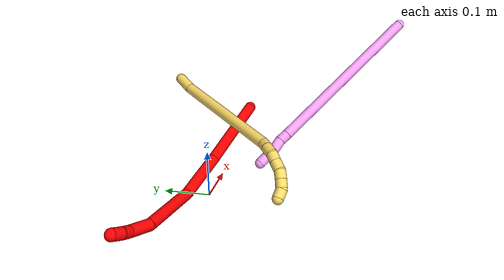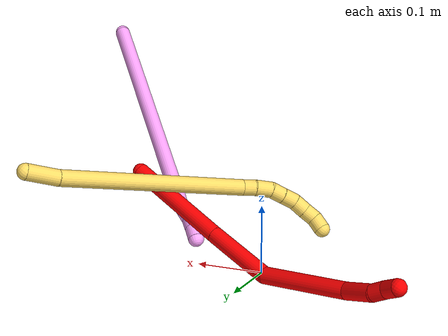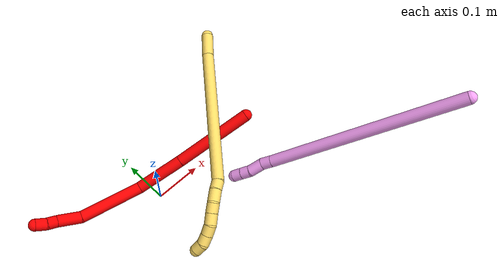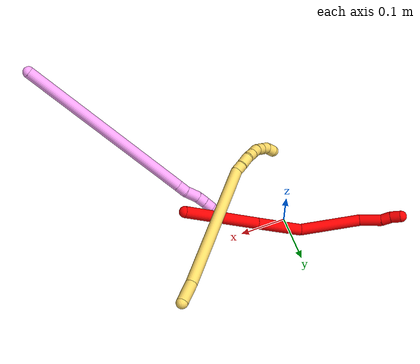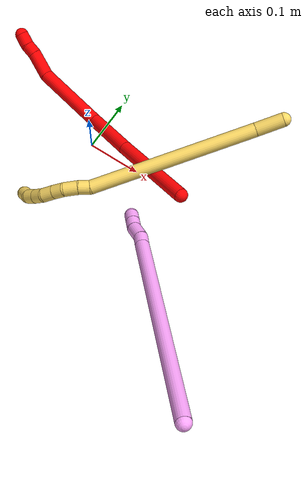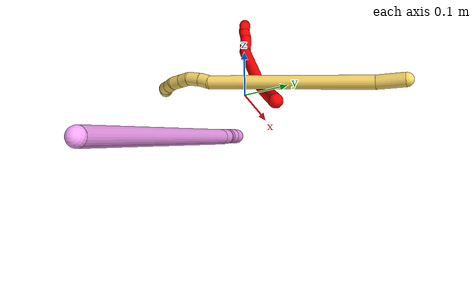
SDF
<sdf version="1.7">
 <world name="default">
  <model name="photoneo_s_sensor">
   <static>1</static>
   <pose>0 0 2 1.57079 1.57079 3.14159</pose>
   <link name="link">
    <inertial><mass>0.1</mass></inertial>
    <sensor name="sensor" type="depth">
     <update_rate>30</update_rate>
     <camera>
      <horizontal_fov>1.22</horizontal_fov>
      <image><width>1920</width><height>1200</height><format>B8G8R8</format></image>
      <clip><near>0.1</near><far>4</far></clip>
      <depth_camera><output>points</output></depth_camera>
     </camera>
     <plugin name="camera_plugin" filename="libgazebo_ros_depth_camera.so">
      <baseline>0.2</baseline>
      <alwaysOn>1</alwaysOn>
      <updateRate>0.0</updateRate>
      <cameraName>camera_ir</cameraName>
      <imageTopicName>/camera/color/image_raw</imageTopicName>
      <cameraInfoTopicName>/camera/color/camera_info</cameraInfoTopicName>
      <depthImageTopicName>/camera/depth/image_raw</depthImageTopicName>
      <depthImageCameraInfoTopicName>/camera/depth/camera_info</depthImageCameraInfoTopicName>
      <pointCloudTopicName>/camera/depth/points</pointCloudTopicName>
      <frameName>fr_optical</frameName>
      <pointCloudCutoff>0.1</pointCloudCutoff>
      <pointCloudCutoffMax>2.0</pointCloudCutoffMax>
      <distortionK1>0</distortionK1>
      <distortionK2>0</distortionK2>
      <distortionK3>0</distortionK3>
      <distortionT1>0</distortionT1>
      <distortionT2>0</distortionT2>
      <CxPrime>0</CxPrime>
      <Cx>0</Cx>
      <Cy>0</Cy>
      <focalLength>0</focalLength>
      <hackBaseline>0</hackBaseline>
     </plugin>
    </sensor>
   </link>
  </model>
  <model name="bin">
   <static>1</static>
   <link name="bottom">
    <collision name="collision-bottom">
     <pose>0 0 -0.01 0 -0 0</pose>
     <geometry><box><size>0.8 0.6 0.02</size></box></geometry>
     <surface>
      <friction><ode><mu>100</mu><mu2>100</mu2></ode></friction>
      <contact><collide_bitmask>65535</collide_bitmask></contact>
     </surface>
    </collision>
   </link>
   <link name="west_wall">
    <collision name="collision-west_wall">
     <pose>-0.41 0 0.1 0 -0 0</pose>
     <geometry><box><size>0.02 0.6 0.2</size></box></geometry>
     <surface>
      <friction><ode><mu>100</mu><mu2>100</mu2></ode></friction>
      <contact><collide_bitmask>65535</collide_bitmask></contact>
     </surface>
    </collision>
   </link>
   <link name="east_wall">
    <collision name="collision-east_wall">
     <pose>0.41 0 0.1 0 -0 0</pose>
     <geometry><box><size>0.02 0.6 0.2</size></box></geometry>
     <surface>
      <friction><ode><mu>100</mu><mu2>100</mu2></ode></friction>
      <contact><collide_bitmask>65535</collide_bitmask></contact>
     </surface>
    </collision>
   </link>
   <link name="south_wall">
    <collision name="collision-south_wall">
     <pose>0 -0.31 0.1 0 -0 0</pose>
     <geometry><box><size>0.8 0.02 0.2</size></box></geometry>
     <surface>
      <friction><ode><mu>100</mu><mu2>100</mu2></ode></friction>
      <contact><collide_bitmask>65535</collide_bitmask></contact>
     </surface>
    </collision>
   </link>
   <link name="north_wall">
    <collision name="collision-north_wall">
     <pose>0 0.31 0.1 0 -0 0</pose>
     <geometry><box><size>0.8 0.02 0.2</size></box></geometry>
     <surface>
      <friction><ode><mu>100</mu><mu2>100</mu2></ode></friction>
      <contact><collide_bitmask>65535</collide_bitmask></contact>
     </surface>
    </collision>
   </link>
  </model>
  <model name="2">
   <static>0</static>
   <link name="2">
    <collision name="collision-cylinder-e_1_1_4">
     <pose>0.004699 0.004672 -0.084354 -3.08626 0.055566 -1.57508</pose>
     <geometry><cylinder><radius>0.0125</radius><length>0.169228</length></cylinder></geometry>
     <surface>
      <friction><ode><mu>1.16</mu><mu2>1.16</mu2><slip1>0</slip1><slip2>0</slip2></ode></friction>
      <contact><ode><kp>1e+06</kp><kd>1</kd><max_vel>0</max_vel><min_depth>0.001</min_depth></ode></contact>
     </surface>
    </collision>
    <visual name="visual-cylinder-e_1_1_4">
     <pose>0.004699 0.004672 -0.084354 -3.08626 0.055566 -1.57508</pose>
     <geometry><cylinder><radius>0.0125</radius><length>0.169228</length></cylinder></geometry>
     <material><ambient>1 0 0 1</ambient></material>
    </visual>
    <collision name="collision-cylinder-e_2_4_5">
     <pose>0.011067 0.013626 -0.220899 -3.05972 0.031842 -0.74153</pose>
     <geometry><cylinder><radius>0.0125</radius><length>0.104784</length></cylinder></geometry>
     <surface>
      <friction><ode><mu>1.16</mu><mu2>1.16</mu2><slip1>0</slip1><slip2>0</slip2></ode></friction>
      <contact><ode><kp>1e+06</kp><kd>1</kd><max_vel>0</max_vel><min_depth>0.001</min_depth></ode></contact>
     </surface>
    </collision>
    <visual name="visual-cylinder-e_2_4_5">
     <pose>0.011067 0.013626 -0.220899 -3.05972 0.031842 -0.74153</pose>
     <geometry><cylinder><radius>0.0125</radius><length>0.104784</length></cylinder></geometry>
     <material><ambient>1 0 0 1</ambient></material>
    </visual>
    <collision name="collision-cylinder-e_3_5_6">
     <pose>-0.012821 0.029422 -0.333546 -2.95342 -0.393579 2.25743</pose>
     <geometry><cylinder><radius>0.0125</radius><length>0.133278</length></cylinder></geometry>
     <surface>
      <friction><ode><mu>1.16</mu><mu2>1.16</mu2><slip1>0</slip1><slip2>0</slip2></ode></friction>
      <contact><ode><kp>1e+06</kp><kd>1</kd><max_vel>0</max_vel><min_depth>0.001</min_depth></ode></contact>
     </surface>
    </collision>
    <visual name="visual-cylinder-e_3_5_6">
     <pose>-0.012821 0.029422 -0.333546 -2.95342 -0.393579 2.25743</pose>
     <geometry><cylinder><radius>0.0125</radius><length>0.133278</length></cylinder></geometry>
     <material><ambient>1 0 0 1</ambient></material>
    </visual>
    <collision name="collision-cylinder-e_4_6_7">
     <pose>-0.047796 0.052322 -0.413509 -2.61317 -0.395104 1.27397</pose>
     <geometry><cylinder><radius>0.0125</radius><length>0.048943</length></cylinder></geometry>
     <surface>
      <friction><ode><mu>1.16</mu><mu2>1.16</mu2><slip1>0</slip1><slip2>0</slip2></ode></friction>
      <contact><ode><kp>1e+06</kp><kd>1</kd><max_vel>0</max_vel><min_depth>0.001</min_depth></ode></contact>
     </surface>
    </collision>
    <visual name="visual-cylinder-e_4_6_7">
     <pose>-0.047796 0.052322 -0.413509 -2.61317 -0.395104 1.27397</pose>
     <geometry><cylinder><radius>0.0125</radius><length>0.048943</length></cylinder></geometry>
     <material><ambient>1 0 0 1</ambient></material>
    </visual>
    <collision name="collision-cylinder-e_5_7_8">
     <pose>-0.064223 0.067257 -0.440355 -2.69136 -0.710027 2.0349</pose>
     <geometry><cylinder><radius>0.0125</radius><length>0.021502</length></cylinder></geometry>
     <surface>
      <friction><ode><mu>1.16</mu><mu2>1.16</mu2><slip1>0</slip1><slip2>0</slip2></ode></friction>
      <contact><ode><kp>1e+06</kp><kd>1</kd><max_vel>0</max_vel><min_depth>0.001</min_depth></ode></contact>
     </surface>
    </collision>
    <visual name="visual-cylinder-e_5_7_8">
     <pose>-0.064223 0.067257 -0.440355 -2.69136 -0.710027 2.0349</pose>
     <geometry><cylinder><radius>0.0125</radius><length>0.021502</length></cylinder></geometry>
     <material><ambient>1 0 0 1</ambient></material>
    </visual>
    <collision name="collision-cylinder-e_6_8_2">
     <pose>-0.076852 0.076634 -0.455335 -2.4899 -0.529268 1.35192</pose>
     <geometry><cylinder><radius>0.0125</radius><length>0.022265</length></cylinder></geometry>
     <surface>
      <friction><ode><mu>1.16</mu><mu2>1.16</mu2><slip1>0</slip1><slip2>0</slip2></ode></friction>
      <contact><ode><kp>1e+06</kp><kd>1</kd><max_vel>0</max_vel><min_depth>0.001</min_depth></ode></contact>
     </surface>
    </collision>
    <visual name="visual-cylinder-e_6_8_2">
     <pose>-0.076852 0.076634 -0.455335 -2.4899 -0.529268 1.35192</pose>
     <geometry><cylinder><radius>0.0125</radius><length>0.022265</length></cylinder></geometry>
     <material><ambient>1 0 0 1</ambient></material>
    </visual>
    <collision name="collision-sphere-2">
     <pose>-0.082473 0.082462 -0.462975 0 -0 0</pose>
     <geometry><sphere><radius>0.0125</radius></sphere></geometry>
     <surface>
      <friction><ode><mu>1.16</mu><mu2>1.16</mu2><slip1>0</slip1><slip2>0</slip2></ode></friction>
      <contact><ode><kp>1e+06</kp><kd>1</kd><max_vel>0</max_vel><min_depth>0.001</min_depth></ode></contact>
     </surface>
    </collision>
    <visual name="visual-sphere-2">
     <pose>-0.082473 0.082462 -0.462975 0 -0 0</pose>
     <geometry><sphere><radius>0.0125</radius></sphere></geometry>
     <material><ambient>1 0 0 1</ambient></material>
    </visual>
    <collision name="collision-sphere-4">
     <pose>0.009399 0.009344 -0.168708 0 -0 0</pose>
     <geometry><sphere><radius>0.0125</radius></sphere></geometry>
     <surface>
      <friction><ode><mu>1.16</mu><mu2>1.16</mu2><slip1>0</slip1><slip2>0</slip2></ode></friction>
      <contact><ode><kp>1e+06</kp><kd>1</kd><max_vel>0</max_vel><min_depth>0.001</min_depth></ode></contact>
     </surface>
    </collision>
    <visual name="visual-sphere-4">
     <pose>0.009399 0.009344 -0.168708 0 -0 0</pose>
     <geometry><sphere><radius>0.0125</radius></sphere></geometry>
     <material><ambient>1 0 0 1</ambient></material>
    </visual>
    <collision name="collision-sphere-1">
     <geometry><sphere><radius>0.0125</radius></sphere></geometry>
     <surface>
      <friction><ode><mu>1.16</mu><mu2>1.16</mu2><slip1>0</slip1><slip2>0</slip2></ode></friction>
      <contact><ode><kp>1e+06</kp><kd>1</kd><max_vel>0</max_vel><min_depth>0.001</min_depth></ode></contact>
     </surface>
    </collision>
    <visual name="visual-sphere-1">
     <geometry><sphere><radius>0.0125</radius></sphere></geometry>
     <material><ambient>1 0 0 1</ambient></material>
    </visual>
    <collision name="collision-sphere-8">
     <pose>-0.071232 0.070805 -0.447696 0 -0 0</pose>
     <geometry><sphere><radius>0.0125</radius></sphere></geometry>
     <surface>
      <friction><ode><mu>1.16</mu><mu2>1.16</mu2><slip1>0</slip1><slip2>0</slip2></ode></friction>
      <contact><ode><kp>1e+06</kp><kd>1</kd><max_vel>0</max_vel><min_depth>0.001</min_depth></ode></contact>
     </surface>
    </collision>
    <visual name="visual-sphere-8">
     <pose>-0.071232 0.070805 -0.447696 0 -0 0</pose>
     <geometry><sphere><radius>0.0125</radius></sphere></geometry>
     <material><ambient>1 0 0 1</ambient></material>
    </visual>
    <collision name="collision-sphere-5">
     <pose>0.012735 0.017909 -0.273089 0 -0 0</pose>
     <geometry><sphere><radius>0.0125</radius></sphere></geometry>
     <surface>
      <friction><ode><mu>1.16</mu><mu2>1.16</mu2><slip1>0</slip1><slip2>0</slip2></ode></friction>
      <contact><ode><kp>1e+06</kp><kd>1</kd><max_vel>0</max_vel><min_depth>0.001</min_depth></ode></contact>
     </surface>
    </collision>
    <visual name="visual-sphere-5">
     <pose>0.012735 0.017909 -0.273089 0 -0 0</pose>
     <geometry><sphere><radius>0.0125</radius></sphere></geometry>
     <material><ambient>1 0 0 1</ambient></material>
    </visual>
    <collision name="collision-sphere-6">
     <pose>-0.038377 0.040935 -0.394004 0 -0 0</pose>
     <geometry><sphere><radius>0.0125</radius></sphere></geometry>
     <surface>
      <friction><ode><mu>1.16</mu><mu2>1.16</mu2><slip1>0</slip1><slip2>0</slip2></ode></friction>
      <contact><ode><kp>1e+06</kp><kd>1</kd><max_vel>0</max_vel><min_depth>0.001</min_depth></ode></contact>
     </surface>
    </collision>
    <visual name="visual-sphere-6">
     <pose>-0.038377 0.040935 -0.394004 0 -0 0</pose>
     <geometry><sphere><radius>0.0125</radius></sphere></geometry>
     <material><ambient>1 0 0 1</ambient></material>
    </visual>
    <collision name="collision-sphere-7">
     <pose>-0.057215 0.063709 -0.433014 0 -0 0</pose>
     <geometry><sphere><radius>0.0125</radius></sphere></geometry>
     <surface>
      <friction><ode><mu>1.16</mu><mu2>1.16</mu2><slip1>0</slip1><slip2>0</slip2></ode></friction>
      <contact><ode><kp>1e+06</kp><kd>1</kd><max_vel>0</max_vel><min_depth>0.001</min_depth></ode></contact>
     </surface>
    </collision>
    <visual name="visual-sphere-7">
     <pose>-0.057215 0.063709 -0.433014 0 -0 0</pose>
     <geometry><sphere><radius>0.0125</radius></sphere></geometry>
     <material><ambient>1 0 0 1</ambient></material>
    </visual>
    <inertial>
     <pose>-0.01037 0.023706 -0.243442 0 -0 0</pose>
     <mass>0.5</mass>
     <inertia>
      <ixx>-0.00037</ixx>
      <ixy>0</ixy>
      <ixz>0</ixz>
      <iyy>-0.000246</iyy>
      <iyz>0</iyz>
      <izz>-5.1e-05</izz>
     </inertia>
    </inertial>
   </link>
   <pose>0.216281 -0.03949 0.121212 0.845546 0.935989 0.710162</pose>
  </model>
  <model name="4">
   <static>0</static>
   <link name="4">
    <collision name="collision-cylinder-e_1_1_4">
     <pose>-0.039723 0.006475 -0.197909 -3.10889 -0.197981 2.81521</pose>
     <geometry><cylinder><radius>0.0125</radius><length>0.40392</length></cylinder></geometry>
     <surface>
      <friction><ode><mu>1.16</mu><mu2>1.16</mu2><slip1>0</slip1><slip2>0</slip2></ode></friction>
      <contact><ode><kp>1e+06</kp><kd>1</kd><max_vel>0</max_vel><min_depth>0.001</min_depth></ode></contact>
     </surface>
    </collision>
    <visual name="visual-cylinder-e_1_1_4">
     <pose>-0.039723 0.006475 -0.197909 -3.10889 -0.197981 2.81521</pose>
     <geometry><cylinder><radius>0.0125</radius><length>0.40392</length></cylinder></geometry>
     <material><ambient>1 0.65098 0.996078 1</ambient></material>
    </visual>
    <collision name="collision-cylinder-e_2_4_5">
     <pose>-0.081889 0.01372 -0.407118 -3.0735 -0.212401 2.52311</pose>
     <geometry><cylinder><radius>0.0125</radius><length>0.023174</length></cylinder></geometry>
     <surface>
      <friction><ode><mu>1.16</mu><mu2>1.16</mu2><slip1>0</slip1><slip2>0</slip2></ode></friction>
      <contact><ode><kp>1e+06</kp><kd>1</kd><max_vel>0</max_vel><min_depth>0.001</min_depth></ode></contact>
     </surface>
    </collision>
    <visual name="visual-cylinder-e_2_4_5">
     <pose>-0.081889 0.01372 -0.407118 -3.0735 -0.212401 2.52311</pose>
     <geometry><cylinder><radius>0.0125</radius><length>0.023174</length></cylinder></geometry>
     <material><ambient>1 0.65098 0.996078 1</ambient></material>
    </visual>
    <collision name="collision-cylinder-e_3_5_6">
     <pose>-0.087815 0.011204 -0.433558 2.92786 -0.221127 -1.60508</pose>
     <geometry><cylinder><radius>0.0125</radius><length>0.031758</length></cylinder></geometry>
     <surface>
      <friction><ode><mu>1.16</mu><mu2>1.16</mu2><slip1>0</slip1><slip2>0</slip2></ode></friction>
      <contact><ode><kp>1e+06</kp><kd>1</kd><max_vel>0</max_vel><min_depth>0.001</min_depth></ode></contact>
     </surface>
    </collision>
    <visual name="visual-cylinder-e_3_5_6">
     <pose>-0.087815 0.011204 -0.433558 2.92786 -0.221127 -1.60508</pose>
     <geometry><cylinder><radius>0.0125</radius><length>0.031758</length></cylinder></geometry>
     <material><ambient>1 0.65098 0.996078 1</ambient></material>
    </visual>
    <collision name="collision-cylinder-e_4_6_7">
     <pose>-0.093489 0.008326 -0.458568 -3.10027 -0.218305 2.76883</pose>
     <geometry><cylinder><radius>0.0125</radius><length>0.020236</length></cylinder></geometry>
     <surface>
      <friction><ode><mu>1.16</mu><mu2>1.16</mu2><slip1>0</slip1><slip2>0</slip2></ode></friction>
      <contact><ode><kp>1e+06</kp><kd>1</kd><max_vel>0</max_vel><min_depth>0.001</min_depth></ode></contact>
     </surface>
    </collision>
    <visual name="visual-cylinder-e_4_6_7">
     <pose>-0.093489 0.008326 -0.458568 -3.10027 -0.218305 2.76883</pose>
     <geometry><cylinder><radius>0.0125</radius><length>0.020236</length></cylinder></geometry>
     <material><ambient>1 0.65098 0.996078 1</ambient></material>
    </visual>
    <collision name="collision-cylinder-e_5_7_2">
     <pose>-0.097532 0.009215 -0.478717 -3.09488 -0.178069 2.62966</pose>
     <geometry><cylinder><radius>0.0125</radius><length>0.020912</length></cylinder></geometry>
     <surface>
      <friction><ode><mu>1.16</mu><mu2>1.16</mu2><slip1>0</slip1><slip2>0</slip2></ode></friction>
      <contact><ode><kp>1e+06</kp><kd>1</kd><max_vel>0</max_vel><min_depth>0.001</min_depth></ode></contact>
     </surface>
    </collision>
    <visual name="visual-cylinder-e_5_7_2">
     <pose>-0.097532 0.009215 -0.478717 -3.09488 -0.178069 2.62966</pose>
     <geometry><cylinder><radius>0.0125</radius><length>0.020912</length></cylinder></geometry>
     <material><ambient>1 0.65098 0.996078 1</ambient></material>
    </visual>
    <collision name="collision-sphere-2">
     <pose>-0.099384 0.009696 -0.488996 0 -0 0</pose>
     <geometry><sphere><radius>0.0125</radius></sphere></geometry>
     <surface>
      <friction><ode><mu>1.16</mu><mu2>1.16</mu2><slip1>0</slip1><slip2>0</slip2></ode></friction>
      <contact><ode><kp>1e+06</kp><kd>1</kd><max_vel>0</max_vel><min_depth>0.001</min_depth></ode></contact>
     </surface>
    </collision>
    <visual name="visual-sphere-2">
     <pose>-0.099384 0.009696 -0.488996 0 -0 0</pose>
     <geometry><sphere><radius>0.0125</radius></sphere></geometry>
     <material><ambient>1 0.65098 0.996078 1</ambient></material>
    </visual>
    <collision name="collision-sphere-7">
     <pose>-0.09568 0.008734 -0.468437 0 -0 0</pose>
     <geometry><sphere><radius>0.0125</radius></sphere></geometry>
     <surface>
      <friction><ode><mu>1.16</mu><mu2>1.16</mu2><slip1>0</slip1><slip2>0</slip2></ode></friction>
      <contact><ode><kp>1e+06</kp><kd>1</kd><max_vel>0</max_vel><min_depth>0.001</min_depth></ode></contact>
     </surface>
    </collision>
    <visual name="visual-sphere-7">
     <pose>-0.09568 0.008734 -0.468437 0 -0 0</pose>
     <geometry><sphere><radius>0.0125</radius></sphere></geometry>
     <material><ambient>1 0.65098 0.996078 1</ambient></material>
    </visual>
    <collision name="collision-sphere-6">
     <pose>-0.091298 0.007918 -0.448698 0 -0 0</pose>
     <geometry><sphere><radius>0.0125</radius></sphere></geometry>
     <surface>
      <friction><ode><mu>1.16</mu><mu2>1.16</mu2><slip1>0</slip1><slip2>0</slip2></ode></friction>
      <contact><ode><kp>1e+06</kp><kd>1</kd><max_vel>0</max_vel><min_depth>0.001</min_depth></ode></contact>
     </surface>
    </collision>
    <visual name="visual-sphere-6">
     <pose>-0.091298 0.007918 -0.448698 0 -0 0</pose>
     <geometry><sphere><radius>0.0125</radius></sphere></geometry>
     <material><ambient>1 0.65098 0.996078 1</ambient></material>
    </visual>
    <collision name="collision-sphere-5">
     <pose>-0.084332 0.01449 -0.418418 0 -0 0</pose>
     <geometry><sphere><radius>0.0125</radius></sphere></geometry>
     <surface>
      <friction><ode><mu>1.16</mu><mu2>1.16</mu2><slip1>0</slip1><slip2>0</slip2></ode></friction>
      <contact><ode><kp>1e+06</kp><kd>1</kd><max_vel>0</max_vel><min_depth>0.001</min_depth></ode></contact>
     </surface>
    </collision>
    <visual name="visual-sphere-5">
     <pose>-0.084332 0.01449 -0.418418 0 -0 0</pose>
     <geometry><sphere><radius>0.0125</radius></sphere></geometry>
     <material><ambient>1 0.65098 0.996078 1</ambient></material>
    </visual>
    <collision name="collision-sphere-1">
     <geometry><sphere><radius>0.0125</radius></sphere></geometry>
     <surface>
      <friction><ode><mu>1.16</mu><mu2>1.16</mu2><slip1>0</slip1><slip2>0</slip2></ode></friction>
      <contact><ode><kp>1e+06</kp><kd>1</kd><max_vel>0</max_vel><min_depth>0.001</min_depth></ode></contact>
     </surface>
    </collision>
    <visual name="visual-sphere-1">
     <geometry><sphere><radius>0.0125</radius></sphere></geometry>
     <material><ambient>1 0.65098 0.996078 1</ambient></material>
    </visual>
    <collision name="collision-sphere-4">
     <pose>-0.079447 0.012949 -0.395818 0 -0 0</pose>
     <geometry><sphere><radius>0.0125</radius></sphere></geometry>
     <surface>
      <friction><ode><mu>1.16</mu><mu2>1.16</mu2><slip1>0</slip1><slip2>0</slip2></ode></friction>
      <contact><ode><kp>1e+06</kp><kd>1</kd><max_vel>0</max_vel><min_depth>0.001</min_depth></ode></contact>
     </surface>
    </collision>
    <visual name="visual-sphere-4">
     <pose>-0.079447 0.012949 -0.395818 0 -0 0</pose>
     <geometry><sphere><radius>0.0125</radius></sphere></geometry>
     <material><ambient>1 0.65098 0.996078 1</ambient></material>
    </visual>
    <inertial>
     <pose>-0.049326 0.0073 -0.244867 0 -0 0</pose>
     <mass>0.5</mass>
     <inertia>
      <ixx>-0.003397</ixx>
      <ixy>0</ixy>
      <ixz>0</ixz>
      <iyy>0.006961</iyy>
      <iyz>0</iyz>
      <izz>0.000871</izz>
     </inertia>
    </inertial>
   </link>
   <pose>0.430491 -0.379308 0.288221 0.270974 0.747678 -0.460128</pose>
  </model>
  <model name="5">
   <static>0</static>
   <link name="5">
    <collision name="collision-cylinder-e_1_1_4">
     <pose>-0.008174 -0.011142 -0.020919 2.6522 -0.332111 -1.18228</pose>
     <geometry><cylinder><radius>0.0125</radius><length>0.050143</length></cylinder></geometry>
     <surface>
      <friction><ode><mu>1.16</mu><mu2>1.16</mu2><slip1>0</slip1><slip2>0</slip2></ode></friction>
      <contact><ode><kp>1e+06</kp><kd>1</kd><max_vel>0</max_vel><min_depth>0.001</min_depth></ode></contact>
     </surface>
    </collision>
    <visual name="visual-cylinder-e_1_1_4">
     <pose>-0.008174 -0.011142 -0.020919 2.6522 -0.332111 -1.18228</pose>
     <geometry><cylinder><radius>0.0125</radius><length>0.050143</length></cylinder></geometry>
     <material><ambient>1 0.858824 0.4 1</ambient></material>
    </visual>
    <collision name="collision-cylinder-e_2_4_5">
     <pose>-0.078732 -0.096519 -0.155743 2.564 -0.430179 -1.26809</pose>
     <geometry><cylinder><radius>0.0125</radius><length>0.299177</length></cylinder></geometry>
     <surface>
      <friction><ode><mu>1.16</mu><mu2>1.16</mu2><slip1>0</slip1><slip2>0</slip2></ode></friction>
      <contact><ode><kp>1e+06</kp><kd>1</kd><max_vel>0</max_vel><min_depth>0.001</min_depth></ode></contact>
     </surface>
    </collision>
    <visual name="visual-cylinder-e_2_4_5">
     <pose>-0.078732 -0.096519 -0.155743 2.564 -0.430179 -1.26809</pose>
     <geometry><cylinder><radius>0.0125</radius><length>0.299177</length></cylinder></geometry>
     <material><ambient>1 0.858824 0.4 1</ambient></material>
    </visual>
    <collision name="collision-cylinder-e_3_5_6">
     <pose>-0.147054 -0.173007 -0.277779 2.87138 -0.613194 -2.33043</pose>
     <geometry><cylinder><radius>0.0125</radius><length>0.020637</length></cylinder></geometry>
     <surface>
      <friction><ode><mu>1.16</mu><mu2>1.16</mu2><slip1>0</slip1><slip2>0</slip2></ode></friction>
      <contact><ode><kp>1e+06</kp><kd>1</kd><max_vel>0</max_vel><min_depth>0.001</min_depth></ode></contact>
     </surface>
    </collision>
    <visual name="visual-cylinder-e_3_5_6">
     <pose>-0.147054 -0.173007 -0.277779 2.87138 -0.613194 -2.33043</pose>
     <geometry><cylinder><radius>0.0125</radius><length>0.020637</length></cylinder></geometry>
     <material><ambient>1 0.858824 0.4 1</ambient></material>
    </visual>
    <collision name="collision-cylinder-e_4_6_7">
     <pose>-0.158897 -0.178959 -0.29674 2.81241 -0.4764 -1.9417</pose>
     <geometry><cylinder><radius>0.0125</radius><length>0.025754</length></cylinder></geometry>
     <surface>
      <friction><ode><mu>1.16</mu><mu2>1.16</mu2><slip1>0</slip1><slip2>0</slip2></ode></friction>
      <contact><ode><kp>1e+06</kp><kd>1</kd><max_vel>0</max_vel><min_depth>0.001</min_depth></ode></contact>
     </surface>
    </collision>
    <visual name="visual-cylinder-e_4_6_7">
     <pose>-0.158897 -0.178959 -0.29674 2.81241 -0.4764 -1.9417</pose>
     <geometry><cylinder><radius>0.0125</radius><length>0.025754</length></cylinder></geometry>
     <material><ambient>1 0.858824 0.4 1</ambient></material>
    </visual>
    <collision name="collision-cylinder-e_5_7_8">
     <pose>-0.166479 -0.184769 -0.317404 2.93016 -0.165163 -1.3249</pose>
     <geometry><cylinder><radius>0.0125</radius><length>0.020394</length></cylinder></geometry>
     <surface>
      <friction><ode><mu>1.16</mu><mu2>1.16</mu2><slip1>0</slip1><slip2>0</slip2></ode></friction>
      <contact><ode><kp>1e+06</kp><kd>1</kd><max_vel>0</max_vel><min_depth>0.001</min_depth></ode></contact>
     </surface>
    </collision>
    <visual name="visual-cylinder-e_5_7_8">
     <pose>-0.166479 -0.184769 -0.317404 2.93016 -0.165163 -1.3249</pose>
     <geometry><cylinder><radius>0.0125</radius><length>0.020394</length></cylinder></geometry>
     <material><ambient>1 0.858824 0.4 1</ambient></material>
    </visual>
    <collision name="collision-cylinder-e_6_8_9">
     <pose>-0.169943 -0.18975 -0.337952 2.87991 -0.159814 -1.09331</pose>
     <geometry><cylinder><radius>0.0125</radius><length>0.02247</length></cylinder></geometry>
     <surface>
      <friction><ode><mu>1.16</mu><mu2>1.16</mu2><slip1>0</slip1><slip2>0</slip2></ode></friction>
      <contact><ode><kp>1e+06</kp><kd>1</kd><max_vel>0</max_vel><min_depth>0.001</min_depth></ode></contact>
     </surface>
    </collision>
    <visual name="visual-cylinder-e_6_8_9">
     <pose>-0.169943 -0.18975 -0.337952 2.87991 -0.159814 -1.09331</pose>
     <geometry><cylinder><radius>0.0125</radius><length>0.02247</length></cylinder></geometry>
     <material><ambient>1 0.858824 0.4 1</ambient></material>
    </visual>
    <collision name="collision-cylinder-e_7_9_10">
     <pose>-0.171487 -0.192294 -0.359092 -3.1104 0.023346 -1.2849</pose>
     <geometry><cylinder><radius>0.0125</radius><length>0.020868</length></cylinder></geometry>
     <surface>
      <friction><ode><mu>1.16</mu><mu2>1.16</mu2><slip1>0</slip1><slip2>0</slip2></ode></friction>
      <contact><ode><kp>1e+06</kp><kd>1</kd><max_vel>0</max_vel><min_depth>0.001</min_depth></ode></contact>
     </surface>
    </collision>
    <visual name="visual-cylinder-e_7_9_10">
     <pose>-0.171487 -0.192294 -0.359092 -3.1104 0.023346 -1.2849</pose>
     <geometry><cylinder><radius>0.0125</radius><length>0.020868</length></cylinder></geometry>
     <material><ambient>1 0.858824 0.4 1</ambient></material>
    </visual>
    <collision name="collision-cylinder-e_8_10_11">
     <pose>-0.171608 -0.191117 -0.379488 -3.05642 -0.036327 0.805914</pose>
     <geometry><cylinder><radius>0.0125</radius><length>0.020026</length></cylinder></geometry>
     <surface>
      <friction><ode><mu>1.16</mu><mu2>1.16</mu2><slip1>0</slip1><slip2>0</slip2></ode></friction>
      <contact><ode><kp>1e+06</kp><kd>1</kd><max_vel>0</max_vel><min_depth>0.001</min_depth></ode></contact>
     </surface>
    </collision>
    <visual name="visual-cylinder-e_8_10_11">
     <pose>-0.171608 -0.191117 -0.379488 -3.05642 -0.036327 0.805914</pose>
     <geometry><cylinder><radius>0.0125</radius><length>0.020026</length></cylinder></geometry>
     <material><ambient>1 0.858824 0.4 1</ambient></material>
    </visual>
    <collision name="collision-cylinder-e_9_11_2">
     <pose>-0.170417 -0.185259 -0.398284 -2.62558 0.152006 -0.561875</pose>
     <geometry><cylinder><radius>0.0125</radius><length>0.020531</length></cylinder></geometry>
     <surface>
      <friction><ode><mu>1.16</mu><mu2>1.16</mu2><slip1>0</slip1><slip2>0</slip2></ode></friction>
      <contact><ode><kp>1e+06</kp><kd>1</kd><max_vel>0</max_vel><min_depth>0.001</min_depth></ode></contact>
     </surface>
    </collision>
    <visual name="visual-cylinder-e_9_11_2">
     <pose>-0.170417 -0.185259 -0.398284 -2.62558 0.152006 -0.561875</pose>
     <geometry><cylinder><radius>0.0125</radius><length>0.020531</length></cylinder></geometry>
     <material><ambient>1 0.858824 0.4 1</ambient></material>
    </visual>
    <collision name="collision-sphere-2">
     <pose>-0.168862 -0.180252 -0.40711 0 -0 0</pose>
     <geometry><sphere><radius>0.0125</radius></sphere></geometry>
     <surface>
      <friction><ode><mu>1.16</mu><mu2>1.16</mu2><slip1>0</slip1><slip2>0</slip2></ode></friction>
      <contact><ode><kp>1e+06</kp><kd>1</kd><max_vel>0</max_vel><min_depth>0.001</min_depth></ode></contact>
     </surface>
    </collision>
    <visual name="visual-sphere-2">
     <pose>-0.168862 -0.180252 -0.40711 0 -0 0</pose>
     <geometry><sphere><radius>0.0125</radius></sphere></geometry>
     <material><ambient>1 0.858824 0.4 1</ambient></material>
    </visual>
    <collision name="collision-sphere-11">
     <pose>-0.171971 -0.190266 -0.389458 0 -0 0</pose>
     <geometry><sphere><radius>0.0125</radius></sphere></geometry>
     <surface>
      <friction><ode><mu>1.16</mu><mu2>1.16</mu2><slip1>0</slip1><slip2>0</slip2></ode></friction>
      <contact><ode><kp>1e+06</kp><kd>1</kd><max_vel>0</max_vel><min_depth>0.001</min_depth></ode></contact>
     </surface>
    </collision>
    <visual name="visual-sphere-11">
     <pose>-0.171971 -0.190266 -0.389458 0 -0 0</pose>
     <geometry><sphere><radius>0.0125</radius></sphere></geometry>
     <material><ambient>1 0.858824 0.4 1</ambient></material>
    </visual>
    <collision name="collision-sphere-10">
     <pose>-0.171244 -0.191968 -0.369518 0 -0 0</pose>
     <geometry><sphere><radius>0.0125</radius></sphere></geometry>
     <surface>
      <friction><ode><mu>1.16</mu><mu2>1.16</mu2><slip1>0</slip1><slip2>0</slip2></ode></friction>
      <contact><ode><kp>1e+06</kp><kd>1</kd><max_vel>0</max_vel><min_depth>0.001</min_depth></ode></contact>
     </surface>
    </collision>
    <visual name="visual-sphere-10">
     <pose>-0.171244 -0.191968 -0.369518 0 -0 0</pose>
     <geometry><sphere><radius>0.0125</radius></sphere></geometry>
     <material><ambient>1 0.858824 0.4 1</ambient></material>
    </visual>
    <collision name="collision-sphere-9">
     <pose>-0.171731 -0.192619 -0.348666 0 -0 0</pose>
     <geometry><sphere><radius>0.0125</radius></sphere></geometry>
     <surface>
      <friction><ode><mu>1.16</mu><mu2>1.16</mu2><slip1>0</slip1><slip2>0</slip2></ode></friction>
      <contact><ode><kp>1e+06</kp><kd>1</kd><max_vel>0</max_vel><min_depth>0.001</min_depth></ode></contact>
     </surface>
    </collision>
    <visual name="visual-sphere-9">
     <pose>-0.171731 -0.192619 -0.348666 0 -0 0</pose>
     <geometry><sphere><radius>0.0125</radius></sphere></geometry>
     <material><ambient>1 0.858824 0.4 1</ambient></material>
    </visual>
    <collision name="collision-sphere-4">
     <pose>-0.016349 -0.022283 -0.041839 0 -0 0</pose>
     <geometry><sphere><radius>0.0125</radius></sphere></geometry>
     <surface>
      <friction><ode><mu>1.16</mu><mu2>1.16</mu2><slip1>0</slip1><slip2>0</slip2></ode></friction>
      <contact><ode><kp>1e+06</kp><kd>1</kd><max_vel>0</max_vel><min_depth>0.001</min_depth></ode></contact>
     </surface>
    </collision>
    <visual name="visual-sphere-4">
     <pose>-0.016349 -0.022283 -0.041839 0 -0 0</pose>
     <geometry><sphere><radius>0.0125</radius></sphere></geometry>
     <material><ambient>1 0.858824 0.4 1</ambient></material>
    </visual>
    <collision name="collision-sphere-1">
     <geometry><sphere><radius>0.0125</radius></sphere></geometry>
     <surface>
      <friction><ode><mu>1.16</mu><mu2>1.16</mu2><slip1>0</slip1><slip2>0</slip2></ode></friction>
      <contact><ode><kp>1e+06</kp><kd>1</kd><max_vel>0</max_vel><min_depth>0.001</min_depth></ode></contact>
     </surface>
    </collision>
    <visual name="visual-sphere-1">
     <geometry><sphere><radius>0.0125</radius></sphere></geometry>
     <material><ambient>1 0.858824 0.4 1</ambient></material>
    </visual>
    <collision name="collision-sphere-8">
     <pose>-0.168155 -0.18688 -0.327238 0 -0 0</pose>
     <geometry><sphere><radius>0.0125</radius></sphere></geometry>
     <surface>
      <friction><ode><mu>1.16</mu><mu2>1.16</mu2><slip1>0</slip1><slip2>0</slip2></ode></friction>
      <contact><ode><kp>1e+06</kp><kd>1</kd><max_vel>0</max_vel><min_depth>0.001</min_depth></ode></contact>
     </surface>
    </collision>
    <visual name="visual-sphere-8">
     <pose>-0.168155 -0.18688 -0.327238 0 -0 0</pose>
     <geometry><sphere><radius>0.0125</radius></sphere></geometry>
     <material><ambient>1 0.858824 0.4 1</ambient></material>
    </visual>
    <collision name="collision-sphere-5">
     <pose>-0.141116 -0.170755 -0.269647 0 -0 0</pose>
     <geometry><sphere><radius>0.0125</radius></sphere></geometry>
     <surface>
      <friction><ode><mu>1.16</mu><mu2>1.16</mu2><slip1>0</slip1><slip2>0</slip2></ode></friction>
      <contact><ode><kp>1e+06</kp><kd>1</kd><max_vel>0</max_vel><min_depth>0.001</min_depth></ode></contact>
     </surface>
    </collision>
    <visual name="visual-sphere-5">
     <pose>-0.141116 -0.170755 -0.269647 0 -0 0</pose>
     <geometry><sphere><radius>0.0125</radius></sphere></geometry>
     <material><ambient>1 0.858824 0.4 1</ambient></material>
    </visual>
    <collision name="collision-sphere-6">
     <pose>-0.152992 -0.17526 -0.285912 0 -0 0</pose>
     <geometry><sphere><radius>0.0125</radius></sphere></geometry>
     <surface>
      <friction><ode><mu>1.16</mu><mu2>1.16</mu2><slip1>0</slip1><slip2>0</slip2></ode></friction>
      <contact><ode><kp>1e+06</kp><kd>1</kd><max_vel>0</max_vel><min_depth>0.001</min_depth></ode></contact>
     </surface>
    </collision>
    <visual name="visual-sphere-6">
     <pose>-0.152992 -0.17526 -0.285912 0 -0 0</pose>
     <geometry><sphere><radius>0.0125</radius></sphere></geometry>
     <material><ambient>1 0.858824 0.4 1</ambient></material>
    </visual>
    <collision name="collision-sphere-7">
     <pose>-0.164802 -0.182659 -0.307569 0 -0 0</pose>
     <geometry><sphere><radius>0.0125</radius></sphere></geometry>
     <surface>
      <friction><ode><mu>1.16</mu><mu2>1.16</mu2><slip1>0</slip1><slip2>0</slip2></ode></friction>
      <contact><ode><kp>1e+06</kp><kd>1</kd><max_vel>0</max_vel><min_depth>0.001</min_depth></ode></contact>
     </surface>
    </collision>
    <visual name="visual-sphere-7">
     <pose>-0.164802 -0.182659 -0.307569 0 -0 0</pose>
     <geometry><sphere><radius>0.0125</radius></sphere></geometry>
     <material><ambient>1 0.858824 0.4 1</ambient></material>
    </visual>
    <inertial>
     <pose>-0.097639 -0.11458 -0.196711 0 -0 0</pose>
     <mass>0.5</mass>
     <inertia>
      <ixx>-0.001363</ixx>
      <ixy>0</ixy>
      <ixz>0</ixz>
      <iyy>-0.002055</iyy>
      <iyz>0</iyz>
      <izz>0.00203</izz>
     </inertia>
    </inertial>
   </link>
   <pose>0.294474 0.160978 0.156142 -0.049653 0.872153 0.311272</pose>
  </model>
 </world>
</sdf>
